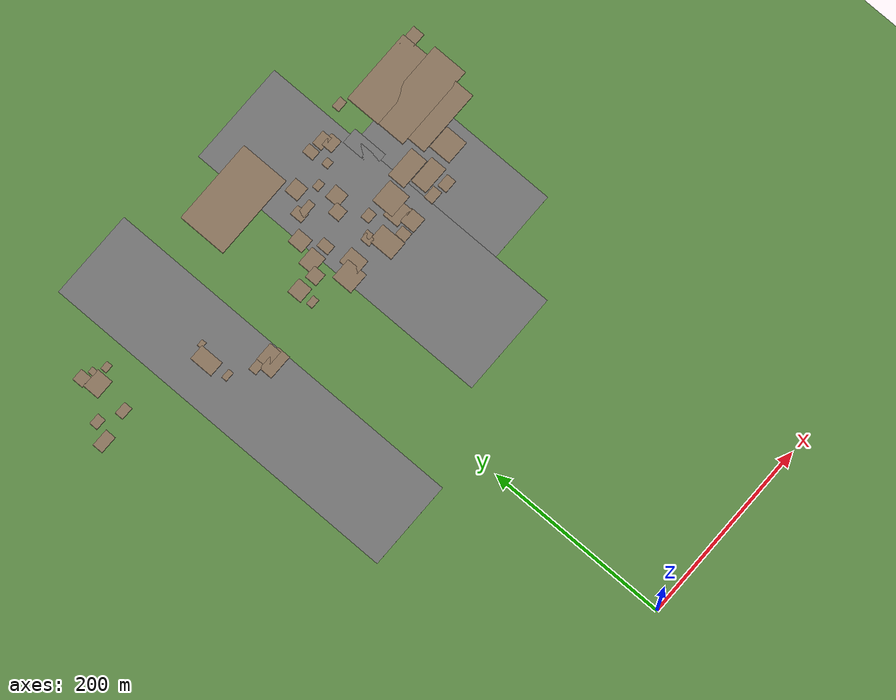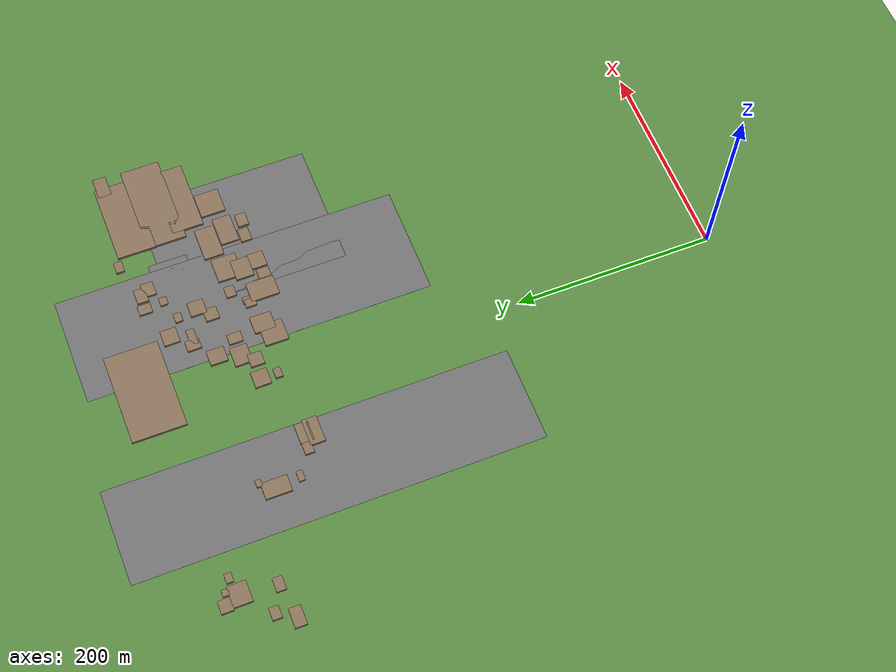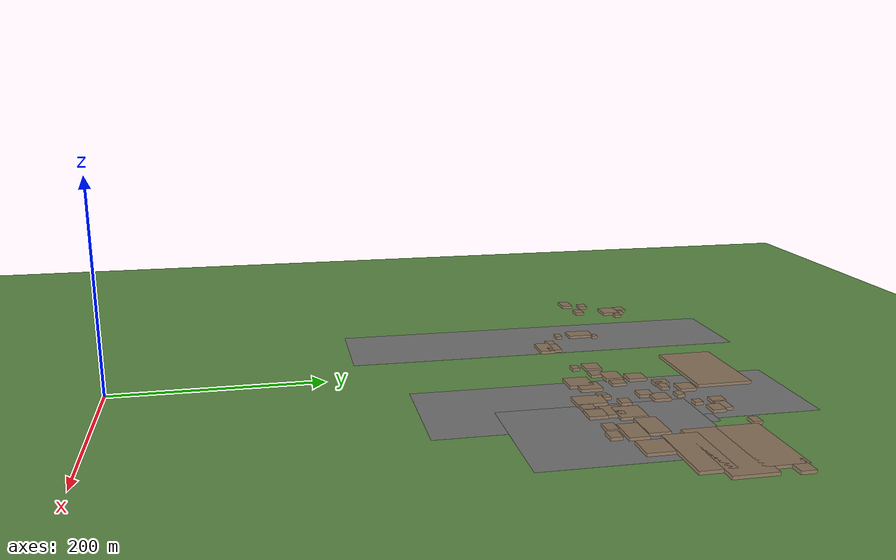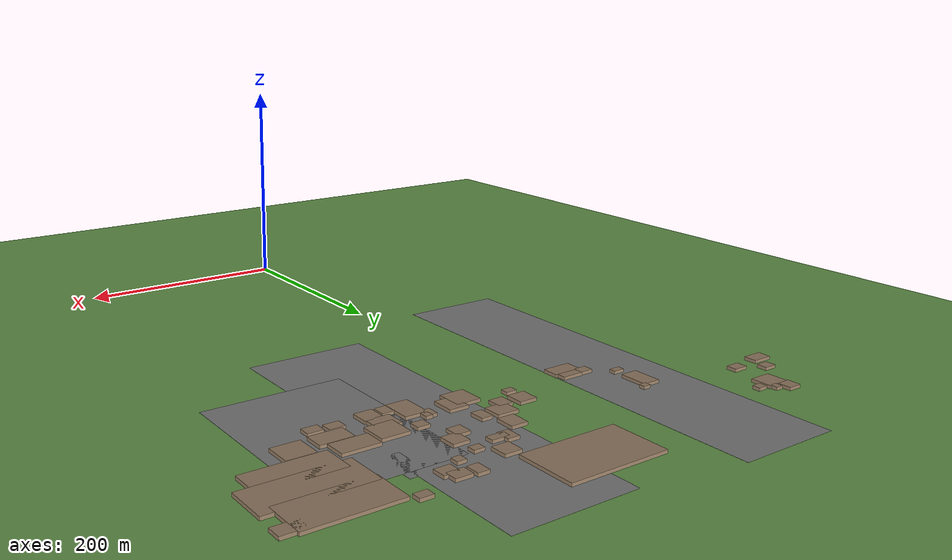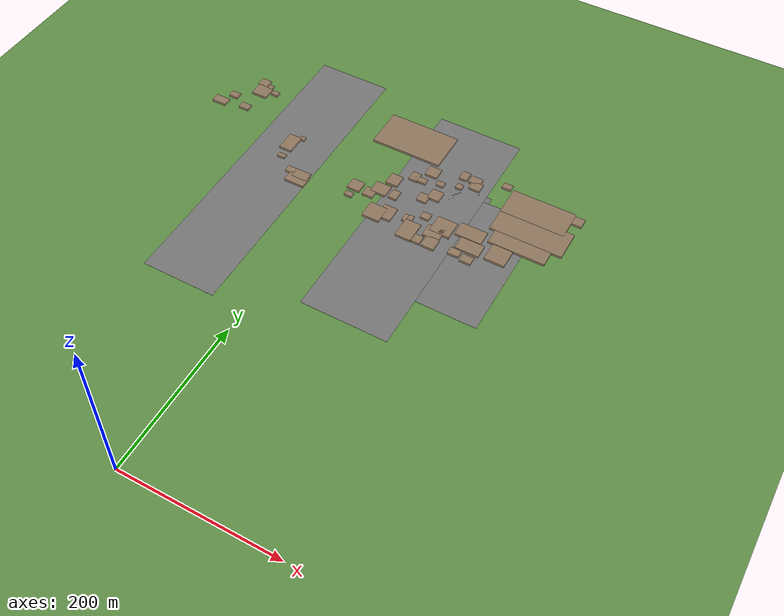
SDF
<sdf version="1.9">
 <world name="kimje_farmland">
  <model name="ground_plane">
   <static>true</static>
   <link name="link">
    <collision name="collision">
     <geometry><plane><normal>0 0 1</normal><size>2000 2000</size></plane></geometry>
    </collision>
    <visual name="visual">
     <geometry><plane><normal>0 0 1</normal><size>2000 2000</size></plane></geometry>
     <material><ambient>0.4 0.6 0.3 1</ambient><diffuse>0.4 0.6 0.3 1</diffuse></material>
    </visual>
   </link>
  </model>
  <model name="osm_75">
   <static>true</static>
   <pose>-90.51 431.63 0.040 0 0 0</pose>
   <link name="link">
    <collision name="collision"><geometry><box><size>95.61 402.24 0.080</size></box></geometry></collision>
    <visual name="visual">
     <geometry><box><size>95.61 402.24 0.080</size></box></geometry>
     <material><ambient>0.5 0.5 0.5 1</ambient><diffuse>0.5 0.5 0.5 1</diffuse></material>
    </visual>
   </link>
  </model>
  <model name="osm_317">
   <static>true</static>
   <pose>-186.80 560.22 1.500 0 0 0</pose>
   <link name="link">
    <collision name="collision"><geometry><box><size>12.86 12.31 3.000</size></box></geometry></collision>
    <visual name="visual">
     <geometry><box><size>12.86 12.31 3.000</size></box></geometry>
     <material><ambient>0.6 0.5 0.4 1</ambient><diffuse>0.6 0.5 0.4 1</diffuse></material>
    </visual>
   </link>
  </model>
  <model name="osm_332">
   <static>true</static>
   <pose>-180.90 545.36 1.500 0 0 0</pose>
   <link name="link">
    <collision name="collision"><geometry><box><size>21.18 18.58 3.000</size></box></geometry></collision>
    <visual name="visual">
     <geometry><box><size>21.18 18.58 3.000</size></box></geometry>
     <material><ambient>0.6 0.5 0.4 1</ambient><diffuse>0.6 0.5 0.4 1</diffuse></material>
    </visual>
   </link>
  </model>
  <model name="osm_333">
   <static>true</static>
   <pose>-208.60 521.50 1.500 0 0 0</pose>
   <link name="link">
    <collision name="collision"><geometry><box><size>12.20 9.28 3.000</size></box></geometry></collision>
    <visual name="visual">
     <geometry><box><size>12.20 9.28 3.000</size></box></geometry>
     <material><ambient>0.6 0.5 0.4 1</ambient><diffuse>0.6 0.5 0.4 1</diffuse></material>
    </visual>
   </link>
  </model>
  <model name="osm_334">
   <static>true</static>
   <pose>-184.51 509.50 1.500 0 0 0</pose>
   <link name="link">
    <collision name="collision"><geometry><box><size>13.76 9.47 3.000</size></box></geometry></collision>
    <visual name="visual">
     <geometry><box><size>13.76 9.47 3.000</size></box></geometry>
     <material><ambient>0.6 0.5 0.4 1</ambient><diffuse>0.6 0.5 0.4 1</diffuse></material>
    </visual>
   </link>
  </model>
  <model name="osm_335">
   <static>true</static>
   <pose>-218.71 504.28 1.500 0 0 0</pose>
   <link name="link">
    <collision name="collision"><geometry><box><size>19.27 11.64 3.000</size></box></geometry></collision>
    <visual name="visual">
     <geometry><box><size>19.27 11.64 3.000</size></box></geometry>
     <material><ambient>0.6 0.5 0.4 1</ambient><diffuse>0.6 0.5 0.4 1</diffuse></material>
    </visual>
   </link>
  </model>
  <model name="osm_336">
   <static>true</static>
   <pose>-163.31 549.57 1.500 0 0 0</pose>
   <link name="link">
    <collision name="collision"><geometry><box><size>9.29 6.88 3.000</size></box></geometry></collision>
    <visual name="visual">
     <geometry><box><size>9.29 6.88 3.000</size></box></geometry>
     <material><ambient>0.6 0.5 0.4 1</ambient><diffuse>0.6 0.5 0.4 1</diffuse></material>
    </visual>
   </link>
  </model>
  <model name="osm_337">
   <static>true</static>
   <pose>-175.16 556.83 1.500 0 0 0</pose>
   <link name="link">
    <collision name="collision"><geometry><box><size>6.69 6.39 3.000</size></box></geometry></collision>
    <visual name="visual">
     <geometry><box><size>6.69 6.39 3.000</size></box></geometry>
     <material><ambient>0.6 0.5 0.4 1</ambient><diffuse>0.6 0.5 0.4 1</diffuse></material>
    </visual>
   </link>
  </model>
  <model name="osm_338">
   <static>true</static>
   <pose>38.47 564.09 1.500 0 0 0</pose>
   <link name="link">
    <collision name="collision"><geometry><box><size>92.64 53.50 3.000</size></box></geometry></collision>
    <visual name="visual">
     <geometry><box><size>92.64 53.50 3.000</size></box></geometry>
     <material><ambient>0.6 0.5 0.4 1</ambient><diffuse>0.6 0.5 0.4 1</diffuse></material>
    </visual>
   </link>
  </model>
  <model name="osm_340">
   <static>true</static>
   <pose>84.87 524.43 1.500 0 0 0</pose>
   <link name="link">
    <collision name="collision"><geometry><box><size>16.08 15.60 3.000</size></box></geometry></collision>
    <visual name="visual">
     <geometry><box><size>16.08 15.60 3.000</size></box></geometry>
     <material><ambient>0.6 0.5 0.4 1</ambient><diffuse>0.6 0.5 0.4 1</diffuse></material>
    </visual>
   </link>
  </model>
  <model name="osm_341">
   <static>true</static>
   <pose>101.82 511.05 1.500 0 0 0</pose>
   <link name="link">
    <collision name="collision"><geometry><box><size>9.79 7.41 3.000</size></box></geometry></collision>
    <visual name="visual">
     <geometry><box><size>9.79 7.41 3.000</size></box></geometry>
     <material><ambient>0.6 0.5 0.4 1</ambient><diffuse>0.6 0.5 0.4 1</diffuse></material>
    </visual>
   </link>
  </model>
  <model name="osm_342">
   <static>true</static>
   <pose>77.08 505.00 1.500 0 0 0</pose>
   <link name="link">
    <collision name="collision"><geometry><box><size>16.56 7.88 3.000</size></box></geometry></collision>
    <visual name="visual">
     <geometry><box><size>16.56 7.88 3.000</size></box></geometry>
     <material><ambient>0.6 0.5 0.4 1</ambient><diffuse>0.6 0.5 0.4 1</diffuse></material>
    </visual>
   </link>
  </model>
  <model name="osm_343">
   <static>true</static>
   <pose>68.75 506.65 1.500 0 0 0</pose>
   <link name="link">
    <collision name="collision"><geometry><box><size>11.03 13.66 3.000</size></box></geometry></collision>
    <visual name="visual">
     <geometry><box><size>11.03 13.66 3.000</size></box></geometry>
     <material><ambient>0.6 0.5 0.4 1</ambient><diffuse>0.6 0.5 0.4 1</diffuse></material>
    </visual>
   </link>
  </model>
  <model name="osm_344">
   <static>true</static>
   <pose>105.38 490.97 1.500 0 0 0</pose>
   <link name="link">
    <collision name="collision"><geometry><box><size>15.41 15.79 3.000</size></box></geometry></collision>
    <visual name="visual">
     <geometry><box><size>15.41 15.79 3.000</size></box></geometry>
     <material><ambient>0.6 0.5 0.4 1</ambient><diffuse>0.6 0.5 0.4 1</diffuse></material>
    </visual>
   </link>
  </model>
  <model name="osm_345">
   <static>true</static>
   <pose>94.16 480.18 1.500 0 0 0</pose>
   <link name="link">
    <collision name="collision"><geometry><box><size>12.96 13.19 3.000</size></box></geometry></collision>
    <visual name="visual">
     <geometry><box><size>12.96 13.19 3.000</size></box></geometry>
     <material><ambient>0.6 0.5 0.4 1</ambient><diffuse>0.6 0.5 0.4 1</diffuse></material>
    </visual>
   </link>
  </model>
  <model name="osm_346">
   <static>true</static>
   <pose>110.83 455.33 1.500 0 0 0</pose>
   <link name="link">
    <collision name="collision"><geometry><box><size>11.67 9.87 3.000</size></box></geometry></collision>
    <visual name="visual">
     <geometry><box><size>11.67 9.87 3.000</size></box></geometry>
     <material><ambient>0.6 0.5 0.4 1</ambient><diffuse>0.6 0.5 0.4 1</diffuse></material>
    </visual>
   </link>
  </model>
  <model name="osm_347">
   <static>true</static>
   <pose>49.49 489.15 1.500 0 0 0</pose>
   <link name="link">
    <collision name="collision"><geometry><box><size>15.88 17.31 3.000</size></box></geometry></collision>
    <visual name="visual">
     <geometry><box><size>15.88 17.31 3.000</size></box></geometry>
     <material><ambient>0.6 0.5 0.4 1</ambient><diffuse>0.6 0.5 0.4 1</diffuse></material>
    </visual>
   </link>
  </model>
  <model name="osm_348">
   <static>true</static>
   <pose>61.46 467.25 1.500 0 0 0</pose>
   <link name="link">
    <collision name="collision"><geometry><box><size>10.64 13.81 3.000</size></box></geometry></collision>
    <visual name="visual">
     <geometry><box><size>10.64 13.81 3.000</size></box></geometry>
     <material><ambient>0.6 0.5 0.4 1</ambient><diffuse>0.6 0.5 0.4 1</diffuse></material>
    </visual>
   </link>
  </model>
  <model name="osm_349">
   <static>true</static>
   <pose>42.28 467.81 1.500 0 0 0</pose>
   <link name="link">
    <collision name="collision"><geometry><box><size>20.06 17.08 3.000</size></box></geometry></collision>
    <visual name="visual">
     <geometry><box><size>20.06 17.08 3.000</size></box></geometry>
     <material><ambient>0.6 0.5 0.4 1</ambient><diffuse>0.6 0.5 0.4 1</diffuse></material>
    </visual>
   </link>
  </model>
  <model name="osm_350">
   <static>true</static>
   <pose>33.12 455.91 1.500 0 0 0</pose>
   <link name="link">
    <collision name="collision"><geometry><box><size>13.76 13.59 3.000</size></box></geometry></collision>
    <visual name="visual">
     <geometry><box><size>13.76 13.59 3.000</size></box></geometry>
     <material><ambient>0.6 0.5 0.4 1</ambient><diffuse>0.6 0.5 0.4 1</diffuse></material>
    </visual>
   </link>
  </model>
  <model name="osm_351">
   <static>true</static>
   <pose>12.80 457.94 1.500 0 0 0</pose>
   <link name="link">
    <collision name="collision"><geometry><box><size>16.84 16.09 3.000</size></box></geometry></collision>
    <visual name="visual">
     <geometry><box><size>16.84 16.09 3.000</size></box></geometry>
     <material><ambient>0.6 0.5 0.4 1</ambient><diffuse>0.6 0.5 0.4 1</diffuse></material>
    </visual>
   </link>
  </model>
  <model name="osm_352">
   <static>true</static>
   <pose>-96.65 481.15 1.500 0 0 0</pose>
   <link name="link">
    <collision name="collision"><geometry><box><size>16.68 25.84 3.000</size></box></geometry></collision>
    <visual name="visual">
     <geometry><box><size>16.68 25.84 3.000</size></box></geometry>
     <material><ambient>0.6 0.5 0.4 1</ambient><diffuse>0.6 0.5 0.4 1</diffuse></material>
    </visual>
   </link>
  </model>
  <model name="osm_353">
   <static>true</static>
   <pose>-87.37 495.08 1.500 0 0 0</pose>
   <link name="link">
    <collision name="collision"><geometry><box><size>7.31 5.44 3.000</size></box></geometry></collision>
    <visual name="visual">
     <geometry><box><size>7.31 5.44 3.000</size></box></geometry>
     <material><ambient>0.6 0.5 0.4 1</ambient><diffuse>0.6 0.5 0.4 1</diffuse></material>
    </visual>
   </link>
  </model>
  <model name="osm_354">
   <static>true</static>
   <pose>-94.10 456.73 1.500 0 0 0</pose>
   <link name="link">
    <collision name="collision"><geometry><box><size>10.45 6.00 3.000</size></box></geometry></collision>
    <visual name="visual">
     <geometry><box><size>10.45 6.00 3.000</size></box></geometry>
     <material><ambient>0.6 0.5 0.4 1</ambient><diffuse>0.6 0.5 0.4 1</diffuse></material>
    </visual>
   </link>
  </model>
  <model name="osm_355">
   <static>true</static>
   <pose>-70.30 440.94 1.500 0 0 0</pose>
   <link name="link">
    <collision name="collision"><geometry><box><size>12.12 8.96 3.000</size></box></geometry></collision>
    <visual name="visual">
     <geometry><box><size>12.12 8.96 3.000</size></box></geometry>
     <material><ambient>0.6 0.5 0.4 1</ambient><diffuse>0.6 0.5 0.4 1</diffuse></material>
    </visual>
   </link>
  </model>
  <model name="osm_356">
   <static>true</static>
   <pose>-54.41 439.25 1.500 0 0 0</pose>
   <link name="link">
    <collision name="collision"><geometry><box><size>20.37 13.29 3.000</size></box></geometry></collision>
    <visual name="visual">
     <geometry><box><size>20.37 13.29 3.000</size></box></geometry>
     <material><ambient>0.6 0.5 0.4 1</ambient><diffuse>0.6 0.5 0.4 1</diffuse></material>
    </visual>
   </link>
  </model>
  <model name="osm_364">
   <static>true</static>
   <pose>-55.72 430.41 1.500 0 0 0</pose>
   <link name="link">
    <collision name="collision"><geometry><box><size>26.98 14.67 3.000</size></box></geometry></collision>
    <visual name="visual">
     <geometry><box><size>26.98 14.67 3.000</size></box></geometry>
     <material><ambient>0.6 0.5 0.4 1</ambient><diffuse>0.6 0.5 0.4 1</diffuse></material>
    </visual>
   </link>
  </model>
  <model name="osm_368">
   <static>true</static>
   <pose>12.33 441.28 1.500 0 0 0</pose>
   <link name="link">
    <collision name="collision"><geometry><box><size>10.23 7.16 3.000</size></box></geometry></collision>
    <visual name="visual">
     <geometry><box><size>10.23 7.16 3.000</size></box></geometry>
     <material><ambient>0.6 0.5 0.4 1</ambient><diffuse>0.6 0.5 0.4 1</diffuse></material>
    </visual>
   </link>
  </model>
  <model name="osm_369">
   <static>true</static>
   <pose>54.19 430.84 1.500 0 0 0</pose>
   <link name="link">
    <collision name="collision"><geometry><box><size>22.95 23.17 3.000</size></box></geometry></collision>
    <visual name="visual">
     <geometry><box><size>22.95 23.17 3.000</size></box></geometry>
     <material><ambient>0.6 0.5 0.4 1</ambient><diffuse>0.6 0.5 0.4 1</diffuse></material>
    </visual>
   </link>
  </model>
  <model name="osm_370">
   <static>true</static>
   <pose>67.72 437.12 1.500 0 0 0</pose>
   <link name="link">
    <collision name="collision"><geometry><box><size>18.01 20.92 3.000</size></box></geometry></collision>
    <visual name="visual">
     <geometry><box><size>18.01 20.92 3.000</size></box></geometry>
     <material><ambient>0.6 0.5 0.4 1</ambient><diffuse>0.6 0.5 0.4 1</diffuse></material>
    </visual>
   </link>
  </model>
  <model name="osm_372">
   <static>true</static>
   <pose>96.44 443.45 1.500 0 0 0</pose>
   <link name="link">
    <collision name="collision"><geometry><box><size>6.53 7.73 3.000</size></box></geometry></collision>
    <visual name="visual">
     <geometry><box><size>6.53 7.73 3.000</size></box></geometry>
     <material><ambient>0.6 0.5 0.4 1</ambient><diffuse>0.6 0.5 0.4 1</diffuse></material>
    </visual>
   </link>
  </model>
  <model name="osm_373">
   <static>true</static>
   <pose>102.69 425.22 1.500 0 0 0</pose>
   <link name="link">
    <collision name="collision"><geometry><box><size>20.59 28.06 3.000</size></box></geometry></collision>
    <visual name="visual">
     <geometry><box><size>20.59 28.06 3.000</size></box></geometry>
     <material><ambient>0.6 0.5 0.4 1</ambient><diffuse>0.6 0.5 0.4 1</diffuse></material>
    </visual>
   </link>
  </model>
  <model name="osm_400">
   <static>true</static>
   <pose>104.03 444.67 0.040 0 0 0</pose>
   <link name="link">
    <collision name="collision"><geometry><box><size>111.50 345.31 0.080</size></box></geometry></collision>
    <visual name="visual">
     <geometry><box><size>111.50 345.31 0.080</size></box></geometry>
     <material><ambient>0.5 0.5 0.5 1</ambient><diffuse>0.5 0.5 0.5 1</diffuse></material>
    </visual>
   </link>
  </model>
  <model name="osm_401">
   <static>true</static>
   <pose>172.93 424.50 0.040 0 0 0</pose>
   <link name="link">
    <collision name="collision"><geometry><box><size>126.91 175.53 0.080</size></box></geometry></collision>
    <visual name="visual">
     <geometry><box><size>126.91 175.53 0.080</size></box></geometry>
     <material><ambient>0.5 0.5 0.5 1</ambient><diffuse>0.5 0.5 0.5 1</diffuse></material>
    </visual>
   </link>
  </model>
  <model name="osm_405">
   <static>true</static>
   <pose>92.49 440.91 1.500 0 0 0</pose>
   <link name="link">
    <collision name="collision"><geometry><box><size>8.48 10.82 3.000</size></box></geometry></collision>
    <visual name="visual">
     <geometry><box><size>8.48 10.82 3.000</size></box></geometry>
     <material><ambient>0.6 0.5 0.4 1</ambient><diffuse>0.6 0.5 0.4 1</diffuse></material>
    </visual>
   </link>
  </model>
  <model name="osm_994">
   <static>true</static>
   <pose>121.81 537.90 1.500 0 0 0</pose>
   <link name="link">
    <collision name="collision"><geometry><box><size>10.44 12.99 3.000</size></box></geometry></collision>
    <visual name="visual">
     <geometry><box><size>10.44 12.99 3.000</size></box></geometry>
     <material><ambient>0.6 0.5 0.4 1</ambient><diffuse>0.6 0.5 0.4 1</diffuse></material>
    </visual>
   </link>
  </model>
  <model name="osm_995">
   <static>true</static>
   <pose>137.01 536.98 1.500 0 0 0</pose>
   <link name="link">
    <collision name="collision"><geometry><box><size>15.52 11.23 3.000</size></box></geometry></collision>
    <visual name="visual">
     <geometry><box><size>15.52 11.23 3.000</size></box></geometry>
     <material><ambient>0.6 0.5 0.4 1</ambient><diffuse>0.6 0.5 0.4 1</diffuse></material>
    </visual>
   </link>
  </model>
  <model name="osm_996">
   <static>true</static>
   <pose>141.21 528.47 1.500 0 0 0</pose>
   <link name="link">
    <collision name="collision"><geometry><box><size>14.52 12.37 3.000</size></box></geometry></collision>
    <visual name="visual">
     <geometry><box><size>14.52 12.37 3.000</size></box></geometry>
     <material><ambient>0.6 0.5 0.4 1</ambient><diffuse>0.6 0.5 0.4 1</diffuse></material>
    </visual>
   </link>
  </model>
  <model name="osm_997">
   <static>true</static>
   <pose>123.77 518.72 1.500 0 0 0</pose>
   <link name="link">
    <collision name="collision"><geometry><box><size>8.55 7.67 3.000</size></box></geometry></collision>
    <visual name="visual">
     <geometry><box><size>8.55 7.67 3.000</size></box></geometry>
     <material><ambient>0.6 0.5 0.4 1</ambient><diffuse>0.6 0.5 0.4 1</diffuse></material>
    </visual>
   </link>
  </model>
  <model name="osm_998">
   <static>true</static>
   <pose>174.91 547.50 1.500 0 0 0</pose>
   <link name="link">
    <collision name="collision"><geometry><box><size>12.01 8.33 3.000</size></box></geometry></collision>
    <visual name="visual">
     <geometry><box><size>12.01 8.33 3.000</size></box></geometry>
     <material><ambient>0.6 0.5 0.4 1</ambient><diffuse>0.6 0.5 0.4 1</diffuse></material>
    </visual>
   </link>
  </model>
  <model name="osm_999">
   <static>true</static>
   <pose>225.44 526.04 1.500 0 0 0</pose>
   <link name="link">
    <collision name="collision"><geometry><box><size>82.41 38.88 3.000</size></box></geometry></collision>
    <visual name="visual">
     <geometry><box><size>82.41 38.88 3.000</size></box></geometry>
     <material><ambient>0.6 0.5 0.4 1</ambient><diffuse>0.6 0.5 0.4 1</diffuse></material>
    </visual>
   </link>
  </model>
  <model name="osm_1000">
   <static>true</static>
   <pose>268.47 536.66 1.500 0 0 0</pose>
   <link name="link">
    <collision name="collision"><geometry><box><size>21.85 13.18 3.000</size></box></geometry></collision>
    <visual name="visual">
     <geometry><box><size>21.85 13.18 3.000</size></box></geometry>
     <material><ambient>0.6 0.5 0.4 1</ambient><diffuse>0.6 0.5 0.4 1</diffuse></material>
    </visual>
   </link>
  </model>
  <model name="osm_1001">
   <static>true</static>
   <pose>231.13 495.32 1.500 0 0 0</pose>
   <link name="link">
    <collision name="collision"><geometry><box><size>92.63 39.11 3.000</size></box></geometry></collision>
    <visual name="visual">
     <geometry><box><size>92.63 39.11 3.000</size></box></geometry>
     <material><ambient>0.6 0.5 0.4 1</ambient><diffuse>0.6 0.5 0.4 1</diffuse></material>
    </visual>
   </link>
  </model>
  <model name="osm_1050">
   <static>true</static>
   <pose>228.60 471.24 1.500 0 0 0</pose>
   <link name="link">
    <collision name="collision"><geometry><box><size>72.26 31.59 3.000</size></box></geometry></collision>
    <visual name="visual">
     <geometry><box><size>72.26 31.59 3.000</size></box></geometry>
     <material><ambient>0.6 0.5 0.4 1</ambient><diffuse>0.6 0.5 0.4 1</diffuse></material>
    </visual>
   </link>
  </model>
  <model name="osm_1051">
   <static>true</static>
   <pose>212.69 442.44 1.500 0 0 0</pose>
   <link name="link">
    <collision name="collision"><geometry><box><size>25.85 24.70 3.000</size></box></geometry></collision>
    <visual name="visual">
     <geometry><box><size>25.85 24.70 3.000</size></box></geometry>
     <material><ambient>0.6 0.5 0.4 1</ambient><diffuse>0.6 0.5 0.4 1</diffuse></material>
    </visual>
   </link>
  </model>
  <model name="osm_1052">
   <static>true</static>
   <pose>170.22 457.09 1.500 0 0 0</pose>
   <link name="link">
    <collision name="collision"><geometry><box><size>34.31 19.69 3.000</size></box></geometry></collision>
    <visual name="visual">
     <geometry><box><size>34.31 19.69 3.000</size></box></geometry>
     <material><ambient>0.6 0.5 0.4 1</ambient><diffuse>0.6 0.5 0.4 1</diffuse></material>
    </visual>
   </link>
  </model>
  <model name="osm_1053">
   <static>true</static>
   <pose>178.16 437.37 1.500 0 0 0</pose>
   <link name="link">
    <collision name="collision"><geometry><box><size>30.27 18.16 3.000</size></box></geometry></collision>
    <visual name="visual">
     <geometry><box><size>30.27 18.16 3.000</size></box></geometry>
     <material><ambient>0.6 0.5 0.4 1</ambient><diffuse>0.6 0.5 0.4 1</diffuse></material>
    </visual>
   </link>
  </model>
  <model name="osm_1054">
   <static>true</static>
   <pose>137.21 449.86 1.500 0 0 0</pose>
   <link name="link">
    <collision name="collision"><geometry><box><size>25.87 24.77 3.000</size></box></geometry></collision>
    <visual name="visual">
     <geometry><box><size>25.87 24.77 3.000</size></box></geometry>
     <material><ambient>0.6 0.5 0.4 1</ambient><diffuse>0.6 0.5 0.4 1</diffuse></material>
    </visual>
   </link>
  </model>
  <model name="osm_1055">
   <static>true</static>
   <pose>131.17 436.27 1.500 0 0 0</pose>
   <link name="link">
    <collision name="collision"><geometry><box><size>21.66 17.98 3.000</size></box></geometry></collision>
    <visual name="visual">
     <geometry><box><size>21.66 17.98 3.000</size></box></geometry>
     <material><ambient>0.6 0.5 0.4 1</ambient><diffuse>0.6 0.5 0.4 1</diffuse></material>
    </visual>
   </link>
  </model>
  <model name="osm_1056">
   <static>true</static>
   <pose>134.65 420.39 1.500 0 0 0</pose>
   <link name="link">
    <collision name="collision"><geometry><box><size>16.87 16.92 3.000</size></box></geometry></collision>
    <visual name="visual">
     <geometry><box><size>16.87 16.92 3.000</size></box></geometry>
     <material><ambient>0.6 0.5 0.4 1</ambient><diffuse>0.6 0.5 0.4 1</diffuse></material>
    </visual>
   </link>
  </model>
  <model name="osm_1058">
   <static>true</static>
   <pose>118.88 418.22 1.500 0 0 0</pose>
   <link name="link">
    <collision name="collision"><geometry><box><size>10.83 12.20 3.000</size></box></geometry></collision>
    <visual name="visual">
     <geometry><box><size>10.83 12.20 3.000</size></box></geometry>
     <material><ambient>0.6 0.5 0.4 1</ambient><diffuse>0.6 0.5 0.4 1</diffuse></material>
    </visual>
   </link>
  </model>
  <model name="osm_1059">
   <static>true</static>
   <pose>166.10 421.60 1.500 0 0 0</pose>
   <link name="link">
    <collision name="collision"><geometry><box><size>14.29 10.41 3.000</size></box></geometry></collision>
    <visual name="visual">
     <geometry><box><size>14.29 10.41 3.000</size></box></geometry>
     <material><ambient>0.6 0.5 0.4 1</ambient><diffuse>0.6 0.5 0.4 1</diffuse></material>
    </visual>
   </link>
  </model>
  <model name="osm_1060">
   <static>true</static>
   <pose>183.21 418.87 1.500 0 0 0</pose>
   <link name="link">
    <collision name="collision"><geometry><box><size>14.25 10.70 3.000</size></box></geometry></collision>
    <visual name="visual">
     <geometry><box><size>14.25 10.70 3.000</size></box></geometry>
     <material><ambient>0.6 0.5 0.4 1</ambient><diffuse>0.6 0.5 0.4 1</diffuse></material>
    </visual>
   </link>
  </model>
  <model name="osm_1153">
   <static>true</static>
   <pose>157.94 501.48 0.040 0 0 0</pose>
   <link name="link">
    <collision name="collision"><geometry><box><size>17.68 38.74 0.080</size></box></geometry></collision>
    <visual name="visual">
     <geometry><box><size>17.68 38.74 0.080</size></box></geometry>
     <material><ambient>0.5 0.5 0.5 1</ambient><diffuse>0.5 0.5 0.5 1</diffuse></material>
    </visual>
   </link>
  </model>
 </world>
</sdf>
